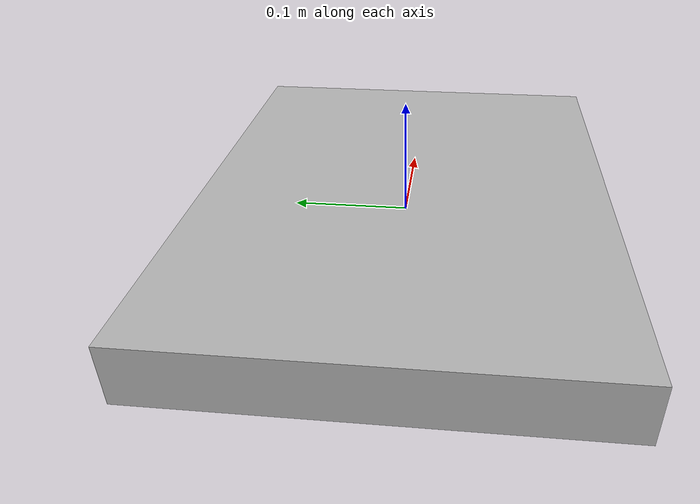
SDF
<?xml version="1.0" ?>
<sdf version="1.5">
  <model name="checkerboard">
    <static>true</static>
    <link name="square_01">
      <pose>0 0 0 0 0 0</pose>
      <visual name="visual">
	<geometry>
	  <box>
	    <size>0.45 0.35 0.05</size>
	  </box>
	</geometry>
	<material>
	  <script>
            <uri>model://checkerboard_textured</uri>
            <name>Checkerboard/Diffuse</name>
          </script>
	</material>
      </visual>
    </link>
  </model>
</sdf>
